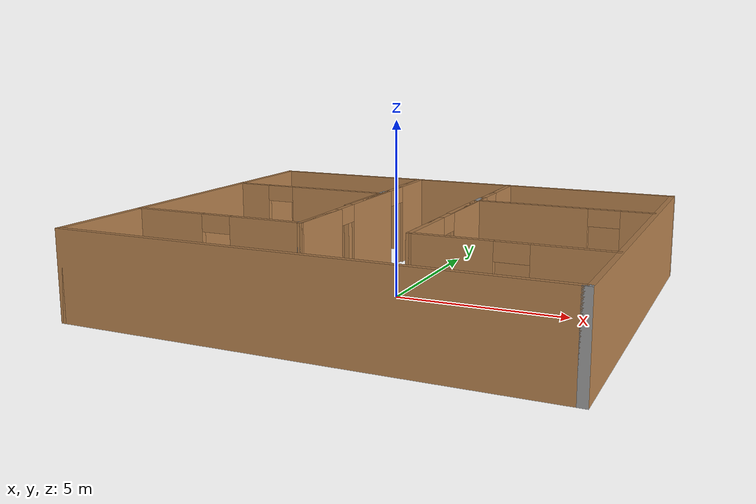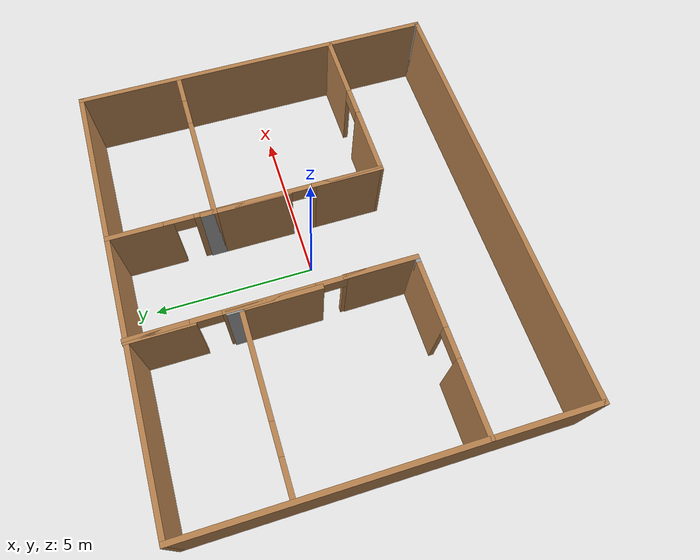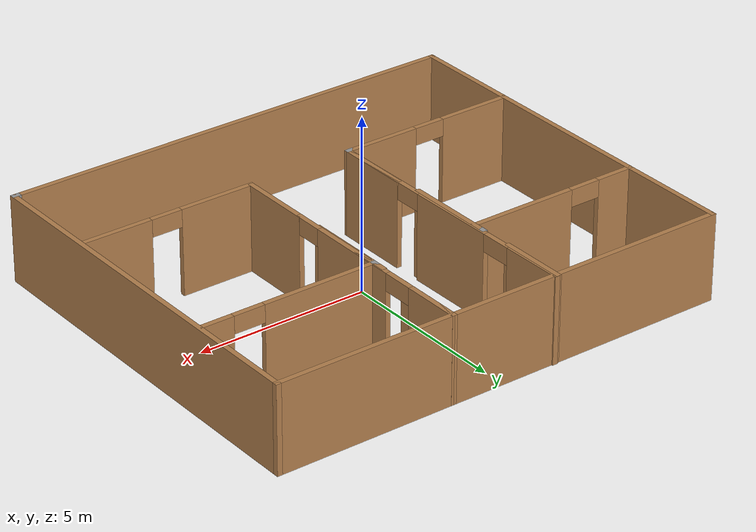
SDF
<?xml version='1.0'?>
<sdf version='1.7'>
  <model name='my_world'>
    <pose>-0.034504 -0.052943 0 0 -0 0</pose>
    <link name='Wall_0'>
      <collision name='Wall_0_Collision'>
        <geometry>
          <box>
            <size>11.5 0.15 2.5</size>
          </box>
        </geometry>
        <pose>0 0 1.25 0 -0 0</pose>
      </collision>
      <visual name='Wall_0_Visual'>
        <pose>0 0 1.25 0 -0 0</pose>
        <geometry>
          <box>
            <size>11.5 0.15 2.5</size>
          </box>
        </geometry>
        <material>
          <script>
            <uri>file://media/materials/scripts/gazebo.material</uri>
            <name>Gazebo/Wood</name>
          </script>
          <ambient>1 1 1 1</ambient>
        </material>
        <meta>
          <layer>0</layer>
        </meta>
      </visual>
      <pose>-6.725 -0.017749 0 0 -0 -1.5708</pose>
    </link>
    <link name='Wall_1'>
      <collision name='Wall_1_Collision'>
        <geometry>
          <box>
            <size>13.5 0.15 2.5</size>
          </box>
        </geometry>
        <pose>0 0 1.25 0 -0 0</pose>
      </collision>
      <visual name='Wall_1_Visual'>
        <pose>0 0 1.25 0 -0 0</pose>
        <geometry>
          <box>
            <size>13.5 0.15 2.5</size>
          </box>
        </geometry>
        <material>
          <script>
            <uri>file://media/materials/scripts/gazebo.material</uri>
            <name>Gazebo/Wood</name>
          </script>
          <ambient>1 1 1 1</ambient>
        </material>
        <meta>
          <layer>0</layer>
        </meta>
      </visual>
      <pose>-0.05 -5.69275 0 0 -0 0</pose>
    </link>
    <link name='Wall_10'>
      <pose>4.09053 2.52753 0 0 -0 3.14159</pose>
      <visual name='Wall_10_Visual_0'>
        <pose>-2.14901 0 1.25 0 -0 0</pose>
        <geometry>
          <box>
            <size>0.951977 0.15 2.5</size>
          </box>
        </geometry>
        <material>
          <script>
            <uri>file://media/materials/scripts/gazebo.material</uri>
            <name>Gazebo/Wood</name>
          </script>
          <ambient>1 1 1 1</ambient>
        </material>
        <meta>
          <layer>0</layer>
        </meta>
      </visual>
      <collision name='Wall_10_Collision_0'>
        <geometry>
          <box>
            <size>0.951977 0.15 2.5</size>
          </box>
        </geometry>
        <pose>-2.14901 0 1.25 0 -0 0</pose>
      </collision>
      <visual name='Wall_10_Visual_1'>
        <pose>0.925989 0 1.25 0 -0 0</pose>
        <geometry>
          <box>
            <size>3.39802 0.15 2.5</size>
          </box>
        </geometry>
        <material>
          <script>
            <uri>file://media/materials/scripts/gazebo.material</uri>
            <name>Gazebo/Wood</name>
          </script>
          <ambient>1 1 1 1</ambient>
        </material>
        <meta>
          <layer>0</layer>
        </meta>
      </visual>
      <collision name='Wall_10_Collision_1'>
        <geometry>
          <box>
            <size>3.39802 0.15 2.5</size>
          </box>
        </geometry>
        <pose>0.925989 0 1.25 0 -0 0</pose>
      </collision>
      <visual name='Wall_10_Visual_2'>
        <pose>-1.22302 0 2.25 0 -0 0</pose>
        <geometry>
          <box>
            <size>0.9 0.15 0.5</size>
          </box>
        </geometry>
        <material>
          <script>
            <uri>file://media/materials/scripts/gazebo.material</uri>
            <name>Gazebo/Wood</name>
          </script>
          <ambient>1 1 1 1</ambient>
        </material>
        <meta>
          <layer>0</layer>
        </meta>
      </visual>
      <collision name='Wall_10_Collision_2'>
        <geometry>
          <box>
            <size>0.9 0.15 0.5</size>
          </box>
        </geometry>
        <pose>-1.22302 0 2.25 0 -0 0</pose>
      </collision>
    </link>
    <link name='Wall_11'>
      <collision name='Wall_11_Collision'>
        <geometry>
          <box>
            <size>0.5 0.15 2.5</size>
          </box>
        </geometry>
        <pose>0 0 1.25 0 -0 0</pose>
      </collision>
      <visual name='Wall_11_Visual'>
        <pose>0 0 1.25 0 -0 0</pose>
        <geometry>
          <box>
            <size>0.5 0.15 2.5</size>
          </box>
        </geometry>
        <material>
          <script>
            <uri>file://media/materials/scripts/gazebo.material</uri>
            <name>Gazebo/Grey</name>
          </script>
          <ambient>1 1 1 1</ambient>
        </material>
        <meta>
          <layer>0</layer>
        </meta>
      </visual>
      <pose>1.54053 2.70253 0 0 -0 1.5708</pose>
    </link>
    <link name='Wall_12'>
      <collision name='Wall_12_Collision'>
        <geometry>
          <box>
            <size>2.75 0.15 2.5</size>
          </box>
        </geometry>
        <pose>0 0 1.25 0 -0 0</pose>
      </collision>
      <visual name='Wall_12_Visual'>
        <pose>0 0 1.25 0 -0 0</pose>
        <geometry>
          <box>
            <size>2.75 0.15 2.5</size>
          </box>
        </geometry>
        <material>
          <script>
            <uri>file://media/materials/scripts/gazebo.material</uri>
            <name>Gazebo/Wood</name>
          </script>
          <ambient>1 1 1 1</ambient>
        </material>
        <meta>
          <layer>0</layer>
        </meta>
      </visual>
      <pose>1.54053 1.57753 0 0 -0 -1.5708</pose>
    </link>
    <link name='Wall_14'>
      <pose>4.12551 -2.59706 0 0 -0 3.14159</pose>
      <visual name='Wall_14_Visual_0'>
        <pose>-1.5784 0 1.25 0 -0 0</pose>
        <geometry>
          <box>
            <size>2.0932 0.15 2.5</size>
          </box>
        </geometry>
        <material>
          <script>
            <uri>file://media/materials/scripts/gazebo.material</uri>
            <name>Gazebo/Wood</name>
          </script>
          <ambient>1 1 1 1</ambient>
        </material>
        <meta>
          <layer>0</layer>
        </meta>
      </visual>
      <collision name='Wall_14_Collision_0'>
        <geometry>
          <box>
            <size>2.0932 0.15 2.5</size>
          </box>
        </geometry>
        <pose>-1.5784 0 1.25 0 -0 0</pose>
      </collision>
      <visual name='Wall_14_Visual_1'>
        <pose>1.4966 0 1.25 0 -0 0</pose>
        <geometry>
          <box>
            <size>2.2568 0.15 2.5</size>
          </box>
        </geometry>
        <material>
          <script>
            <uri>file://media/materials/scripts/gazebo.material</uri>
            <name>Gazebo/Wood</name>
          </script>
          <ambient>1 1 1 1</ambient>
        </material>
        <meta>
          <layer>0</layer>
        </meta>
      </visual>
      <collision name='Wall_14_Collision_1'>
        <geometry>
          <box>
            <size>2.2568 0.15 2.5</size>
          </box>
        </geometry>
        <pose>1.4966 0 1.25 0 -0 0</pose>
      </collision>
      <visual name='Wall_14_Visual_2'>
        <pose>-0.081796 0 2.25 0 -0 0</pose>
        <geometry>
          <box>
            <size>0.9 0.15 0.5</size>
          </box>
        </geometry>
        <material>
          <script>
            <uri>file://media/materials/scripts/gazebo.material</uri>
            <name>Gazebo/Wood</name>
          </script>
          <ambient>1 1 1 1</ambient>
        </material>
        <meta>
          <layer>0</layer>
        </meta>
      </visual>
      <collision name='Wall_14_Collision_2'>
        <geometry>
          <box>
            <size>0.9 0.15 0.5</size>
          </box>
        </geometry>
        <pose>-0.081796 0 2.25 0 -0 0</pose>
      </collision>
    </link>
    <link name='Wall_15'>
      <collision name='Wall_15_Collision'>
        <geometry>
          <box>
            <size>2.25 0.15 2.5</size>
          </box>
        </geometry>
        <pose>0 0 1.25 0 -0 0</pose>
      </collision>
      <visual name='Wall_15_Visual'>
        <pose>0 0 1.25 0 -0 0</pose>
        <geometry>
          <box>
            <size>2.25 0.15 2.5</size>
          </box>
        </geometry>
        <material>
          <script>
            <uri>file://media/materials/scripts/gazebo.material</uri>
            <name>Gazebo/Wood</name>
          </script>
          <ambient>1 1 1 1</ambient>
        </material>
        <meta>
          <layer>0</layer>
        </meta>
      </visual>
      <pose>1.57551 -1.54706 0 0 -0 1.5708</pose>
    </link>
    <link name='Wall_17'>
      <pose>-4.16436 2.51416 0 0 -0 0</pose>
      <visual name='Wall_17_Visual_0'>
        <pose>-2.04818 0 1.25 0 -0 0</pose>
        <geometry>
          <box>
            <size>1.15363 0.15 2.5</size>
          </box>
        </geometry>
        <material>
          <script>
            <uri>file://media/materials/scripts/gazebo.material</uri>
            <name>Gazebo/Wood</name>
          </script>
          <ambient>1 1 1 1</ambient>
        </material>
        <meta>
          <layer>0</layer>
        </meta>
      </visual>
      <collision name='Wall_17_Collision_0'>
        <geometry>
          <box>
            <size>1.15363 0.15 2.5</size>
          </box>
        </geometry>
        <pose>-2.04818 0 1.25 0 -0 0</pose>
      </collision>
      <visual name='Wall_17_Visual_1'>
        <pose>1.02682 0 1.25 0 -0 0</pose>
        <geometry>
          <box>
            <size>3.19637 0.15 2.5</size>
          </box>
        </geometry>
        <material>
          <script>
            <uri>file://media/materials/scripts/gazebo.material</uri>
            <name>Gazebo/Wood</name>
          </script>
          <ambient>1 1 1 1</ambient>
        </material>
        <meta>
          <layer>0</layer>
        </meta>
      </visual>
      <collision name='Wall_17_Collision_1'>
        <geometry>
          <box>
            <size>3.19637 0.15 2.5</size>
          </box>
        </geometry>
        <pose>1.02682 0 1.25 0 -0 0</pose>
      </collision>
      <visual name='Wall_17_Visual_2'>
        <pose>-1.02137 0 2.25 0 -0 0</pose>
        <geometry>
          <box>
            <size>0.9 0.15 0.5</size>
          </box>
        </geometry>
        <material>
          <script>
            <uri>file://media/materials/scripts/gazebo.material</uri>
            <name>Gazebo/Wood</name>
          </script>
          <ambient>1 1 1 1</ambient>
        </material>
        <meta>
          <layer>0</layer>
        </meta>
      </visual>
      <collision name='Wall_17_Collision_2'>
        <geometry>
          <box>
            <size>0.9 0.15 0.5</size>
          </box>
        </geometry>
        <pose>-1.02137 0 2.25 0 -0 0</pose>
      </collision>
    </link>
    <link name='Wall_18'>
      <collision name='Wall_18_Collision'>
        <geometry>
          <box>
            <size>0.5 0.15 2.5</size>
          </box>
        </geometry>
        <pose>0 0 1.25 0 -0 0</pose>
      </collision>
      <visual name='Wall_18_Visual'>
        <pose>0 0 1.25 0 -0 0</pose>
        <geometry>
          <box>
            <size>0.5 0.15 2.5</size>
          </box>
        </geometry>
        <material>
          <script>
            <uri>file://media/materials/scripts/gazebo.material</uri>
            <name>Gazebo/Grey</name>
          </script>
          <ambient>1 1 1 1</ambient>
        </material>
        <meta>
          <layer>0</layer>
        </meta>
      </visual>
      <pose>-1.61436 2.68916 0 0 -0 1.5708</pose>
    </link>
    <link name='Wall_19'>
      <collision name='Wall_19_Collision'>
        <geometry>
          <box>
            <size>2.75 0.15 2.5</size>
          </box>
        </geometry>
        <pose>0 0 1.25 0 -0 0</pose>
      </collision>
      <visual name='Wall_19_Visual'>
        <pose>0 0 1.25 0 -0 0</pose>
        <geometry>
          <box>
            <size>2.75 0.15 2.5</size>
          </box>
        </geometry>
        <material>
          <script>
            <uri>file://media/materials/scripts/gazebo.material</uri>
            <name>Gazebo/Wood</name>
          </script>
          <ambient>1 1 1 1</ambient>
        </material>
        <meta>
          <layer>0</layer>
        </meta>
      </visual>
      <pose>-1.61436 1.56416 0 0 -0 -1.5708</pose>
    </link>
    <link name='Wall_2'>
      <collision name='Wall_2_Collision'>
        <geometry>
          <box>
            <size>0.25 0.15 2.5</size>
          </box>
        </geometry>
        <pose>0 0 1.25 0 -0 0</pose>
      </collision>
      <visual name='Wall_2_Visual'>
        <pose>0 0 1.25 0 -0 0</pose>
        <geometry>
          <box>
            <size>0.25 0.15 2.5</size>
          </box>
        </geometry>
        <material>
          <script>
            <uri>file://media/materials/scripts/gazebo.material</uri>
            <name>Gazebo/Grey</name>
          </script>
          <ambient>1 1 1 1</ambient>
        </material>
        <meta>
          <layer>0</layer>
        </meta>
      </visual>
      <pose>6.675 -5.69275 0 0 -0 0</pose>
    </link>
    <link name='Wall_21'>
      <pose>-4.16436 -2.57457 0 0 -0 0</pose>
      <visual name='Wall_21_Visual_0'>
        <pose>-1.52523 0 1.25 0 -0 0</pose>
        <geometry>
          <box>
            <size>2.19954 0.15 2.5</size>
          </box>
        </geometry>
        <material>
          <script>
            <uri>file://media/materials/scripts/gazebo.material</uri>
            <name>Gazebo/Wood</name>
          </script>
          <ambient>1 1 1 1</ambient>
        </material>
        <meta>
          <layer>0</layer>
        </meta>
      </visual>
      <collision name='Wall_21_Collision_0'>
        <geometry>
          <box>
            <size>2.19954 0.15 2.5</size>
          </box>
        </geometry>
        <pose>-1.52523 0 1.25 0 -0 0</pose>
      </collision>
      <visual name='Wall_21_Visual_1'>
        <pose>1.54977 0 1.25 0 -0 0</pose>
        <geometry>
          <box>
            <size>2.15046 0.15 2.5</size>
          </box>
        </geometry>
        <material>
          <script>
            <uri>file://media/materials/scripts/gazebo.material</uri>
            <name>Gazebo/Wood</name>
          </script>
          <ambient>1 1 1 1</ambient>
        </material>
        <meta>
          <layer>0</layer>
        </meta>
      </visual>
      <collision name='Wall_21_Collision_1'>
        <geometry>
          <box>
            <size>2.15046 0.15 2.5</size>
          </box>
        </geometry>
        <pose>1.54977 0 1.25 0 -0 0</pose>
      </collision>
      <visual name='Wall_21_Visual_2'>
        <pose>0.024537 0 2.25 0 -0 0</pose>
        <geometry>
          <box>
            <size>0.9 0.15 0.5</size>
          </box>
        </geometry>
        <material>
          <script>
            <uri>file://media/materials/scripts/gazebo.material</uri>
            <name>Gazebo/Wood</name>
          </script>
          <ambient>1 1 1 1</ambient>
        </material>
        <meta>
          <layer>0</layer>
        </meta>
      </visual>
      <collision name='Wall_21_Collision_2'>
        <geometry>
          <box>
            <size>0.9 0.15 0.5</size>
          </box>
        </geometry>
        <pose>0.024537 0 2.25 0 -0 0</pose>
      </collision>
    </link>
    <link name='Wall_22'>
      <collision name='Wall_22_Collision'>
        <geometry>
          <box>
            <size>0.25 0.15 2.5</size>
          </box>
        </geometry>
        <pose>0 0 1.25 0 -0 0</pose>
      </collision>
      <visual name='Wall_22_Visual'>
        <pose>0 0 1.25 0 -0 0</pose>
        <geometry>
          <box>
            <size>0.25 0.15 2.5</size>
          </box>
        </geometry>
        <material>
          <script>
            <uri>file://media/materials/scripts/gazebo.material</uri>
            <name>Gazebo/Grey</name>
          </script>
          <ambient>1 1 1 1</ambient>
        </material>
        <meta>
          <layer>0</layer>
        </meta>
      </visual>
      <pose>-1.56436 -2.57457 0 0 -0 0</pose>
    </link>
    <link name='Wall_23'>
      <collision name='Wall_23_Collision'>
        <geometry>
          <box>
            <size>2.25 0.15 2.5</size>
          </box>
        </geometry>
        <pose>0 0 1.25 0 -0 0</pose>
      </collision>
      <visual name='Wall_23_Visual'>
        <pose>0 0 1.25 0 -0 0</pose>
        <geometry>
          <box>
            <size>2.25 0.15 2.5</size>
          </box>
        </geometry>
        <material>
          <script>
            <uri>file://media/materials/scripts/gazebo.material</uri>
            <name>Gazebo/Wood</name>
          </script>
          <ambient>1 1 1 1</ambient>
        </material>
        <meta>
          <layer>0</layer>
        </meta>
      </visual>
      <pose>-1.51436 -1.52457 0 0 -0 1.5708</pose>
    </link>
    <link name='Wall_25'>
      <pose>-1.54988 1.55877 0 0 -0 1.57939</pose>
      <visual name='Wall_25_Visual_0'>
        <pose>-3.13846 0 1.25 0 -0 0</pose>
        <geometry>
          <box>
            <size>2.14006 0.15 2.5</size>
          </box>
        </geometry>
        <material>
          <script>
            <uri>file://media/materials/scripts/gazebo.material</uri>
            <name>Gazebo/Wood</name>
          </script>
          <ambient>1 1 1 1</ambient>
        </material>
        <meta>
          <layer>0</layer>
        </meta>
      </visual>
      <collision name='Wall_25_Collision_0'>
        <geometry>
          <box>
            <size>2.14006 0.15 2.5</size>
          </box>
        </geometry>
        <pose>-3.13846 0 1.25 0 -0 0</pose>
      </collision>
      <visual name='Wall_25_Visual_1'>
        <pose>0.152189 0 1.25 0 -0 0</pose>
        <geometry>
          <box>
            <size>2.64124 0.15 2.5</size>
          </box>
        </geometry>
        <material>
          <script>
            <uri>file://media/materials/scripts/gazebo.material</uri>
            <name>Gazebo/Wood</name>
          </script>
          <ambient>1 1 1 1</ambient>
        </material>
        <meta>
          <layer>0</layer>
        </meta>
      </visual>
      <collision name='Wall_25_Collision_1'>
        <geometry>
          <box>
            <size>2.64124 0.15 2.5</size>
          </box>
        </geometry>
        <pose>0.152189 0 1.25 0 -0 0</pose>
      </collision>
      <visual name='Wall_25_Visual_2'>
        <pose>3.29065 0 1.25 0 -0 0</pose>
        <geometry>
          <box>
            <size>1.83568 0.15 2.5</size>
          </box>
        </geometry>
        <material>
          <script>
            <uri>file://media/materials/scripts/gazebo.material</uri>
            <name>Gazebo/Wood</name>
          </script>
          <ambient>1 1 1 1</ambient>
        </material>
        <meta>
          <layer>0</layer>
        </meta>
      </visual>
      <collision name='Wall_25_Collision_2'>
        <geometry>
          <box>
            <size>1.83568 0.15 2.5</size>
          </box>
        </geometry>
        <pose>3.29065 0 1.25 0 -0 0</pose>
      </collision>
      <visual name='Wall_25_Visual_3'>
        <pose>-1.61843 0 2.25 0 -0 0</pose>
        <geometry>
          <box>
            <size>0.9 0.15 0.5</size>
          </box>
        </geometry>
        <material>
          <script>
            <uri>file://media/materials/scripts/gazebo.material</uri>
            <name>Gazebo/Wood</name>
          </script>
          <ambient>1 1 1 1</ambient>
        </material>
        <meta>
          <layer>0</layer>
        </meta>
      </visual>
      <collision name='Wall_25_Collision_3'>
        <geometry>
          <box>
            <size>0.9 0.15 0.5</size>
          </box>
        </geometry>
        <pose>-1.61843 0 2.25 0 -0 0</pose>
      </collision>
      <visual name='Wall_25_Visual_4'>
        <pose>1.92281 0 2.25 0 -0 0</pose>
        <geometry>
          <box>
            <size>0.9 0.15 0.5</size>
          </box>
        </geometry>
        <material>
          <script>
            <uri>file://media/materials/scripts/gazebo.material</uri>
            <name>Gazebo/Wood</name>
          </script>
          <ambient>1 1 1 1</ambient>
        </material>
        <meta>
          <layer>0</layer>
        </meta>
      </visual>
      <collision name='Wall_25_Collision_4'>
        <geometry>
          <box>
            <size>0.9 0.15 0.5</size>
          </box>
        </geometry>
        <pose>1.92281 0 2.25 0 -0 0</pose>
      </collision>
    </link>
    <link name='Wall_27'>
      <pose>1.57196 1.53059 0 0 -0 1.57166</pose>
      <visual name='Wall_27_Visual_0'>
        <pose>-3.14191 0 1.25 0 -0 0</pose>
        <geometry>
          <box>
            <size>2.1215 0.15 2.5</size>
          </box>
        </geometry>
        <material>
          <script>
            <uri>file://media/materials/scripts/gazebo.material</uri>
            <name>Gazebo/Wood</name>
          </script>
          <ambient>1 1 1 1</ambient>
        </material>
        <meta>
          <layer>0</layer>
        </meta>
      </visual>
      <collision name='Wall_27_Collision_0'>
        <geometry>
          <box>
            <size>2.1215 0.15 2.5</size>
          </box>
        </geometry>
        <pose>-3.14191 0 1.25 0 -0 0</pose>
      </collision>
      <visual name='Wall_27_Visual_1'>
        <pose>0.209196 0 1.25 0 -0 0</pose>
        <geometry>
          <box>
            <size>2.78071 0.15 2.5</size>
          </box>
        </geometry>
        <material>
          <script>
            <uri>file://media/materials/scripts/gazebo.material</uri>
            <name>Gazebo/Wood</name>
          </script>
          <ambient>1 1 1 1</ambient>
        </material>
        <meta>
          <layer>0</layer>
        </meta>
      </visual>
      <collision name='Wall_27_Collision_1'>
        <geometry>
          <box>
            <size>2.78071 0.15 2.5</size>
          </box>
        </geometry>
        <pose>0.209196 0 1.25 0 -0 0</pose>
      </collision>
      <visual name='Wall_27_Visual_2'>
        <pose>3.35111 0 1.25 0 -0 0</pose>
        <geometry>
          <box>
            <size>1.7031 0.15 2.5</size>
          </box>
        </geometry>
        <material>
          <script>
            <uri>file://media/materials/scripts/gazebo.material</uri>
            <name>Gazebo/Wood</name>
          </script>
          <ambient>1 1 1 1</ambient>
        </material>
        <meta>
          <layer>0</layer>
        </meta>
      </visual>
      <collision name='Wall_27_Collision_2'>
        <geometry>
          <box>
            <size>1.7031 0.15 2.5</size>
          </box>
        </geometry>
        <pose>3.35111 0 1.25 0 -0 0</pose>
      </collision>
      <visual name='Wall_27_Visual_3'>
        <pose>-1.63116 0 2.25 0 -0 0</pose>
        <geometry>
          <box>
            <size>0.9 0.15 0.5</size>
          </box>
        </geometry>
        <material>
          <script>
            <uri>file://media/materials/scripts/gazebo.material</uri>
            <name>Gazebo/Wood</name>
          </script>
          <ambient>1 1 1 1</ambient>
        </material>
        <meta>
          <layer>0</layer>
        </meta>
      </visual>
      <collision name='Wall_27_Collision_3'>
        <geometry>
          <box>
            <size>0.9 0.15 0.5</size>
          </box>
        </geometry>
        <pose>-1.63116 0 2.25 0 -0 0</pose>
      </collision>
      <visual name='Wall_27_Visual_4'>
        <pose>2.04955 0 2.25 0 -0 0</pose>
        <geometry>
          <box>
            <size>0.9 0.15 0.5</size>
          </box>
        </geometry>
        <material>
          <script>
            <uri>file://media/materials/scripts/gazebo.material</uri>
            <name>Gazebo/Wood</name>
          </script>
          <ambient>1 1 1 1</ambient>
        </material>
        <meta>
          <layer>0</layer>
        </meta>
      </visual>
      <collision name='Wall_27_Collision_4'>
        <geometry>
          <box>
            <size>0.9 0.15 0.5</size>
          </box>
        </geometry>
        <pose>2.04955 0 2.25 0 -0 0</pose>
      </collision>
    </link>
    <link name='Wall_3'>
      <collision name='Wall_3_Collision'>
        <geometry>
          <box>
            <size>11.5 0.15 2.5</size>
          </box>
        </geometry>
        <pose>0 0 1.25 0 -0 0</pose>
      </collision>
      <visual name='Wall_3_Visual'>
        <pose>0 0 1.25 0 -0 0</pose>
        <geometry>
          <box>
            <size>11.5 0.15 2.5</size>
          </box>
        </geometry>
        <material>
          <script>
            <uri>file://media/materials/scripts/gazebo.material</uri>
            <name>Gazebo/Wood</name>
          </script>
          <ambient>1 1 1 1</ambient>
        </material>
        <meta>
          <layer>0</layer>
        </meta>
      </visual>
      <pose>6.725 -0.017749 0 0 -0 1.5708</pose>
    </link>
    <link name='Wall_4'>
      <collision name='Wall_4_Collision'>
        <geometry>
          <box>
            <size>13.6 0.15 2.5</size>
          </box>
        </geometry>
        <pose>0 0 1.25 0 -0 0</pose>
      </collision>
      <visual name='Wall_4_Visual'>
        <pose>0 0 1.25 0 -0 0</pose>
        <geometry>
          <box>
            <size>13.6 0.15 2.5</size>
          </box>
        </geometry>
        <material>
          <script>
            <uri>file://media/materials/scripts/gazebo.material</uri>
            <name>Gazebo/Wood</name>
          </script>
          <ambient>1 1 1 1</ambient>
        </material>
        <meta>
          <layer>0</layer>
        </meta>
      </visual>
      <pose>0 5.65725 0 0 -0 3.14159</pose>
    </link>
    <link name='Wall_6'>
      <collision name='Wall_6_Collision'>
        <geometry>
          <box>
            <size>2 0.15 2.5</size>
          </box>
        </geometry>
        <pose>0 0 1.25 0 -0 0</pose>
      </collision>
      <visual name='Wall_6_Visual'>
        <pose>0 0 1.25 0 -0 0</pose>
        <geometry>
          <box>
            <size>2 0.15 2.5</size>
          </box>
        </geometry>
        <material>
          <script>
            <uri>file://media/materials/scripts/gazebo.material</uri>
            <name>Gazebo/Wood</name>
          </script>
          <ambient>1 1 1 1</ambient>
        </material>
        <meta>
          <layer>0</layer>
        </meta>
      </visual>
      <pose>-1.63627 4.75538 0 0 -0 -1.5708</pose>
    </link>
    <link name='Wall_8'>
      <collision name='Wall_8_Collision'>
        <geometry>
          <box>
            <size>2 0.15 2.5</size>
          </box>
        </geometry>
        <pose>0 0 1.25 0 -0 0</pose>
      </collision>
      <visual name='Wall_8_Visual'>
        <pose>0 0 1.25 0 -0 0</pose>
        <geometry>
          <box>
            <size>2 0.15 2.5</size>
          </box>
        </geometry>
        <material>
          <script>
            <uri>file://media/materials/scripts/gazebo.material</uri>
            <name>Gazebo/Wood</name>
          </script>
          <ambient>1 1 1 1</ambient>
        </material>
        <meta>
          <layer>0</layer>
        </meta>
      </visual>
      <pose>1.56841 4.73325 0 0 -0 -1.5708</pose>
    </link>
    <static>1</static>
  </model>
</sdf>
